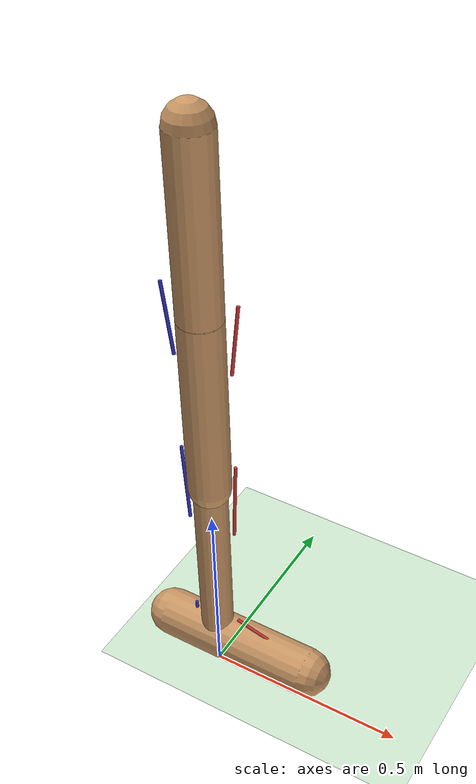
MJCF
<mujoco model="hopper_muscle">
  <compiler angle="radian" autolimits="true"/>
  <option timestep="0.004166667" gravity="0 0 -9.81" solver="Newton" jacobian="dense"
          iterations="20" ls_iterations="20"/>

  <default>
    <joint limited="true" armature="1" damping="1"/>
    <geom condim="3" friction="0.9 0.005 0.0001" solref="0.06 1.2" solimp="0.95 0.99 0.001 0.5 2"
          margin="0.001" density="1000" rgba="0.8 0.6 0.4 1"/>
    <default class="muscle">
      <general ctrllimited="true" ctrlrange="0 1"
               dyntype="muscle" dynprm="0.01 0.04 0.02 0 0 0 0 0 0 0"
               gaintype="muscle" gainprm="0.75 1.05 -1 4000 0.5 1.6 1.5 1.3 1.2 0"
               biastype="muscle" biasprm="0.75 1.05 -1 4000 0.5 1.6 1.5 1.3 1.2 0"/>
    </default>
    <site size="0.006" rgba="0.9 0.3 0.3 1" group="3"/>
  </default>

  <worldbody>
    <geom name="floor" type="plane" size="40 40 0.125" rgba="0.8 0.9 0.8 1"/>
    <body name="torso" pos="0 0 1.25">
      <joint name="rootx" type="slide" axis="1 0 0" pos="0 0 -1.25" limited="false" armature="0" damping="0"/>
      <joint name="rootz" type="slide" axis="0 0 1" limited="false" armature="0" damping="0"/>
      <joint name="rooty" type="hinge" axis="0 1 0" limited="false" armature="0" damping="0"/>
      <geom name="torso_geom" type="capsule" size="0.05 0.2"/>
      <site name="hip_f_org" pos="0.09 0 -0.14"/>
      <site name="hip_b_org" pos="-0.09 0 -0.14"/>
      <body name="thigh" pos="0 0 -0.2">
        <joint name="thigh_joint" type="hinge" axis="0 -1 0" range="-2.61799 0"/>
        <geom name="thigh_geom" type="capsule" size="0.05 0.225" pos="0 0 -0.225"/>
        <site name="hip_f_ins" pos="0.07 0 -0.11"/>
        <site name="hip_b_ins" pos="-0.07 0 -0.11"/>
        <site name="knee_f_org" pos="0.07 0 -0.36"/>
        <site name="knee_b_org" pos="-0.07 0 -0.36"/>
        <body name="leg" pos="0 0 -0.7">
          <joint name="leg_joint" type="hinge" axis="0 -1 0" pos="0 0 0.25" range="-2.61799 0"/>
          <geom name="leg_geom" type="capsule" size="0.04 0.25"/>
          <site name="knee_f_ins" pos="0.06 0 0.13"/>
          <site name="knee_b_ins" pos="-0.06 0 0.13"/>
          <site name="ankle_f_org" pos="0.06 0 -0.17"/>
          <site name="ankle_b_org" pos="-0.06 0 -0.17"/>
          <body name="foot" pos="0 0 -0.25">
            <joint name="foot_joint" type="hinge" axis="0 -1 0" range="-0.785398 0.785398"/>
            <geom name="foot_geom" type="capsule" size="0.06 0.195" pos="0.06 0 0"
                  quat="0.707107 0 -0.707107 0" friction="2 0.005 0.0001"/>
            <site name="ankle_f_ins" pos="0.17 0 0.05"/>
            <site name="ankle_b_ins" pos="-0.06 0 0.05"/>
          </body>
        </body>
      </body>
    </body>
  </worldbody>

  <tendon>
    <spatial name="hip_f" width="0.004" rgba="0.8 0.2 0.2 1">
      <site site="hip_f_org"/><site site="hip_f_ins"/>
    </spatial>
    <spatial name="hip_b" width="0.004" rgba="0.2 0.2 0.8 1">
      <site site="hip_b_org"/><site site="hip_b_ins"/>
    </spatial>
    <spatial name="knee_f" width="0.004" rgba="0.8 0.2 0.2 1">
      <site site="knee_f_org"/><site site="knee_f_ins"/>
    </spatial>
    <spatial name="knee_b" width="0.004" rgba="0.2 0.2 0.8 1">
      <site site="knee_b_org"/><site site="knee_b_ins"/>
    </spatial>
    <spatial name="ankle_f" width="0.004" rgba="0.8 0.2 0.2 1">
      <site site="ankle_f_org"/><site site="ankle_f_ins"/>
    </spatial>
    <spatial name="ankle_b" width="0.004" rgba="0.2 0.2 0.8 1">
      <site site="ankle_b_org"/><site site="ankle_b_ins"/>
    </spatial>
  </tendon>

  <actuator>
    <general class="muscle" name="hip_flex" tendon="hip_f"
             gainprm="0.75 1.05 3505 4000 0.5 1.6 1.5 1.3 1.2 0"
             biasprm="0.75 1.05 3505 4000 0.5 1.6 1.5 1.3 1.2 0"/>
    <general class="muscle" name="hip_ext" tendon="hip_b"
             gainprm="0.75 1.05 2015 4000 0.5 1.6 1.5 1.3 1.2 0"
             biasprm="0.75 1.05 2015 4000 0.5 1.6 1.5 1.3 1.2 0"/>
    <general class="muscle" name="knee_flex" tendon="knee_f"
             gainprm="0.75 1.05 4470 4000 0.5 1.6 1.5 1.3 1.2 0"
             biasprm="0.75 1.05 4470 4000 0.5 1.6 1.5 1.3 1.2 0"/>
    <general class="muscle" name="knee_ext" tendon="knee_b"
             gainprm="0.75 1.05 2005 4000 0.5 1.6 1.5 1.3 1.2 0"
             biasprm="0.75 1.05 2005 4000 0.5 1.6 1.5 1.3 1.2 0"/>
    <general class="muscle" name="ankle_dorsi" tendon="ankle_f"
             gainprm="0.75 1.05 2035 4000 0.5 1.6 1.5 1.3 1.2 0"
             biasprm="0.75 1.05 2035 4000 0.5 1.6 1.5 1.3 1.2 0"/>
    <general class="muscle" name="ankle_plantar" tendon="ankle_b"
             gainprm="0.75 1.05 2590 4000 0.5 1.6 1.5 1.3 1.2 0"
             biasprm="0.75 1.05 2590 4000 0.5 1.6 1.5 1.3 1.2 0"/>
  </actuator>
</mujoco>
